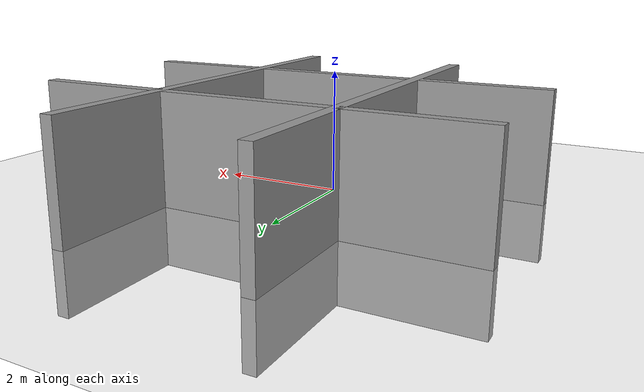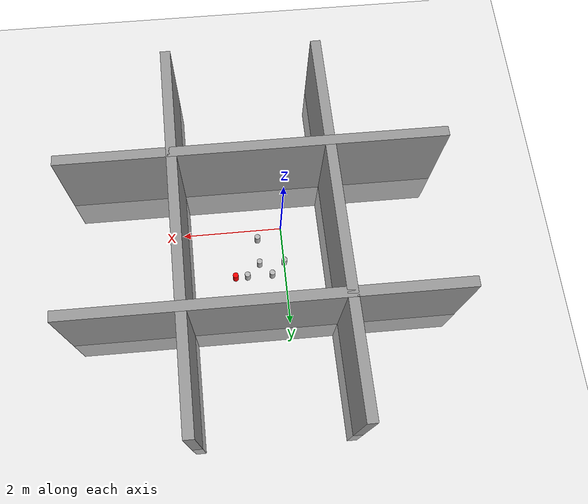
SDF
<sdf version="1.6">
 <world name="default">
  <light name="sun" type="directional">
   <pose>0 0 10 0 -0 0</pose>
   <diffuse>0.8 0.8 0.8 1</diffuse>
   <specular>0.1 0.1 0.1 1</specular>
   <attenuation>
    <range>1000</range>
    <constant>0.9</constant>
    <linear>0.01</linear>
    <quadratic>0.001</quadratic>
   </attenuation>
   <direction>-0.5 0.5 -1</direction>
  </light>
  <model name="ground_plane">
   <static>1</static>
   <link name="link">
    <collision name="collision">
     <geometry><plane><normal>0 0 1</normal><size>100 100</size></plane></geometry>
     <surface><friction><ode><mu>100</mu><mu2>50</mu2></ode></friction></surface>
    </collision>
    <visual name="visual">
     <cast_shadows>0</cast_shadows>
     <geometry><plane><normal>0 0 1</normal><size>100 100</size></plane></geometry>
     <material>
      <script><uri>file://media/materials/scripts/gazebo.material</uri><name>Gazebo/Grey</name></script>
     </material>
    </visual>
   </link>
  </model>
  <gravity>0 0 -9.8</gravity>
  <magnetic_field>6e-06 2.3e-05 -4.2e-05</magnetic_field>
  <atmosphere type="adiabatic"/>
  <physics name="default_physics" default="0" type="ode">
   <max_step_size>0.001</max_step_size>
   <real_time_factor>1</real_time_factor>
   <real_time_update_rate>1000</real_time_update_rate>
  </physics>
  <scene><ambient>0.4 0.4 0.4 1</ambient><background>0.7 0.7 0.7 1</background><shadows>1</shadows></scene>
  <spherical_coordinates>
   <surface_model>EARTH_WGS84</surface_model>
   <latitude_deg>0</latitude_deg>
   <longitude_deg>0</longitude_deg>
   <elevation>0</elevation>
   <heading_deg>0</heading_deg>
  </spherical_coordinates>
  <model name="goal">
   <link name="link">
    <pose>0 0 0.115 0 -0 0</pose>
    <inertial>
     <mass>0.0005</mass>
     <inertia><ixx>0.00058</ixx><ixy>0</ixy><ixz>0</ixz><iyy>0.00058</iyy><iyz>0</iyz><izz>0.00019</izz></inertia>
    </inertial>
    <visual name="visual">
     <geometry><cylinder><radius>0.055</radius><length>0.23</length></cylinder></geometry>
     <material>
      <script>
       <uri>model://beer/materials/scripts</uri>
       <uri>model://beer/materials/textures</uri>
       <name>Beer/Diffuse</name>
      </script>
      <ambient>1 0 0 1</ambient>
      <diffuse>1 0 0 1</diffuse>
      <specular>0 0 0 1</specular>
      <emissive>0 0 0 1</emissive>
      <shader type="vertex"><normal_map>__default__</normal_map></shader>
     </material>
    </visual>
    <collision name="collision">
     <geometry><cylinder><radius>0.055</radius><length>0.23</length></cylinder></geometry>
     <surface>
      <friction>
       <ode><mu>1</mu><mu2>1</mu2><fdir1>0 0 0</fdir1><slip1>0</slip1><slip2>0</slip2></ode>
       <torsional>
        <coefficient>1</coefficient>
        <patch_radius>0</patch_radius>
        <surface_radius>0</surface_radius>
        <use_patch_radius>1</use_patch_radius>
        <ode><slip>0</slip></ode>
       </torsional>
      </friction>
      <bounce><restitution_coefficient>0</restitution_coefficient><threshold>1e+06</threshold></bounce>
      <contact>
       <collide_without_contact>0</collide_without_contact>
       <collide_without_contact_bitmask>1</collide_without_contact_bitmask>
       <collide_bitmask>1</collide_bitmask>
       <ode>
        <soft_cfm>0</soft_cfm>
        <soft_erp>0.2</soft_erp>
        <kp>1e+13</kp>
        <kd>1</kd>
        <max_vel>0.01</max_vel>
        <min_depth>0</min_depth>
       </ode>
       <bullet>
        <split_impulse>1</split_impulse>
        <split_impulse_penetration_threshold>-0.01</split_impulse_penetration_threshold>
        <soft_cfm>0</soft_cfm>
        <soft_erp>0.2</soft_erp>
        <kp>1e+13</kp>
        <kd>1</kd>
       </bullet>
      </contact>
     </surface>
    </collision>
   </link>
   <static>0</static>
   <pose>1.0 1.0 -9e-06 -1e-06 -4e-06 0</pose>
  </model>
  <model name="wall1">
   <static>1</static>
   <link name="link">
    <pose>0 0 0.42 0 -0 0</pose>
    <collision name="collision"><geometry><box><size>7.5 0.2 2.8</size></box></geometry></collision>
    <visual name="visual">
     <cast_shadows>0</cast_shadows>
     <geometry><box><size>7.5 0.2 2.8</size></box></geometry>
     <material>
      <script>
       <uri>model://grey_wall/materials/scripts</uri>
       <uri>model://grey_wall/materials/textures</uri>
       <name>vrc/grey_wall</name>
      </script>
     </material>
    </visual>
   </link>
   <pose>-1 0.5 0 0 -0 -1.55905</pose>
  </model>
  <model name="wall2">
   <static>1</static>
   <link name="link">
    <pose>0 0 0.42 0 -0 0</pose>
    <collision name="collision"><geometry><box><size>7.5 0.2 2.8</size></box></geometry></collision>
    <visual name="visual">
     <cast_shadows>0</cast_shadows>
     <geometry><box><size>7.5 0.2 2.8</size></box></geometry>
     <material>
      <script>
       <uri>model://grey_wall/materials/scripts</uri>
       <uri>model://grey_wall/materials/textures</uri>
       <name>vrc/grey_wall</name>
      </script>
     </material>
    </visual>
   </link>
   <pose>0.5 2.0 0 0 -0 0</pose>
  </model>
  <model name="wall3">
   <static>1</static>
   <link name="link">
    <pose>0 0 0.42 0 -0 0</pose>
    <collision name="collision"><geometry><box><size>7.5 0.2 2.8</size></box></geometry></collision>
    <visual name="visual">
     <cast_shadows>0</cast_shadows>
     <geometry><box><size>7.5 0.2 2.8</size></box></geometry>
     <material>
      <script>
       <uri>model://grey_wall/materials/scripts</uri>
       <uri>model://grey_wall/materials/textures</uri>
       <name>vrc/grey_wall</name>
      </script>
     </material>
    </visual>
   </link>
   <pose>2.0 0.5 0 0 -0 -1.55905</pose>
  </model>
  <model name="wall4">
   <static>1</static>
   <link name="link">
    <pose>0 0 0.42 0 -0 0</pose>
    <collision name="collision"><geometry><box><size>7.5 0.2 2.8</size></box></geometry></collision>
    <visual name="visual">
     <cast_shadows>0</cast_shadows>
     <geometry><box><size>7.5 0.2 2.8</size></box></geometry>
     <material>
      <script>
       <uri>model://grey_wall/materials/scripts</uri>
       <uri>model://grey_wall/materials/textures</uri>
       <name>vrc/grey_wall</name>
      </script>
     </material>
    </visual>
   </link>
   <pose>0.5 -1 0 0 -0 0</pose>
  </model>
  <model name="can0.7615635818871.0">
   <link name="link">
    <pose>0 0 0.115 0 -0 0</pose>
    <inertial>
     <mass>0.39</mass>
     <inertia><ixx>0.00058</ixx><ixy>0</ixy><ixz>0</ixz><iyy>0.00058</iyy><iyz>0</iyz><izz>0.00019</izz></inertia>
    </inertial>
    <collision name="collision">
     <geometry><cylinder><radius>0.055</radius><length>0.23</length></cylinder></geometry>
    </collision>
    <visual name="visual">
     <geometry><cylinder><radius>0.055</radius><length>0.23</length></cylinder></geometry>
     <material>
      <script>
       <uri>model://beer/materials/scripts</uri>
       <uri>model://beer/materials/textures</uri>
       <name>Beer/Diffuse</name>
      </script>
     </material>
    </visual>
   </link>
   <pose>0.761563581887 1.0 -2e-06 1e-06 0 -9.5e-05</pose>
  </model>
  <model name="can0.00.746787555282">
   <link name="link">
    <pose>0 0 0.115 0 -0 0</pose>
    <inertial>
     <mass>0.39</mass>
     <inertia><ixx>0.00058</ixx><ixy>0</ixy><ixz>0</ixz><iyy>0.00058</iyy><iyz>0</iyz><izz>0.00019</izz></inertia>
    </inertial>
    <collision name="collision">
     <geometry><cylinder><radius>0.055</radius><length>0.23</length></cylinder></geometry>
    </collision>
    <visual name="visual">
     <geometry><cylinder><radius>0.055</radius><length>0.23</length></cylinder></geometry>
     <material>
      <script>
       <uri>model://beer/materials/scripts</uri>
       <uri>model://beer/materials/textures</uri>
       <name>Beer/Diffuse</name>
      </script>
     </material>
    </visual>
   </link>
   <pose>0.0 0.746787555282 -2e-06 1e-06 0 -9.5e-05</pose>
  </model>
  <model name="can0.2654599720961.0">
   <link name="link">
    <pose>0 0 0.115 0 -0 0</pose>
    <inertial>
     <mass>0.39</mass>
     <inertia><ixx>0.00058</ixx><ixy>0</ixy><ixz>0</ixz><iyy>0.00058</iyy><iyz>0</iyz><izz>0.00019</izz></inertia>
    </inertial>
    <collision name="collision">
     <geometry><cylinder><radius>0.055</radius><length>0.23</length></cylinder></geometry>
    </collision>
    <visual name="visual">
     <geometry><cylinder><radius>0.055</radius><length>0.23</length></cylinder></geometry>
     <material>
      <script>
       <uri>model://beer/materials/scripts</uri>
       <uri>model://beer/materials/textures</uri>
       <name>Beer/Diffuse</name>
      </script>
     </material>
    </visual>
   </link>
   <pose>0.265459972096 1.0 -2e-06 1e-06 0 -9.5e-05</pose>
  </model>
  <model name="can0.50.74825235342">
   <link name="link">
    <pose>0 0 0.115 0 -0 0</pose>
    <inertial>
     <mass>0.39</mass>
     <inertia><ixx>0.00058</ixx><ixy>0</ixy><ixz>0</ixz><iyy>0.00058</iyy><iyz>0</iyz><izz>0.00019</izz></inertia>
    </inertial>
    <collision name="collision">
     <geometry><cylinder><radius>0.055</radius><length>0.23</length></cylinder></geometry>
    </collision>
    <visual name="visual">
     <geometry><cylinder><radius>0.055</radius><length>0.23</length></cylinder></geometry>
     <material>
      <script>
       <uri>model://beer/materials/scripts</uri>
       <uri>model://beer/materials/textures</uri>
       <name>Beer/Diffuse</name>
      </script>
     </material>
    </visual>
   </link>
   <pose>0.5 0.74825235342 -2e-06 1e-06 0 -9.5e-05</pose>
  </model>
  <model name="can0.50.218411751346">
   <link name="link">
    <pose>0 0 0.115 0 -0 0</pose>
    <inertial>
     <mass>0.39</mass>
     <inertia><ixx>0.00058</ixx><ixy>0</ixy><ixz>0</ixz><iyy>0.00058</iyy><iyz>0</iyz><izz>0.00019</izz></inertia>
    </inertial>
    <collision name="collision">
     <geometry><cylinder><radius>0.055</radius><length>0.23</length></cylinder></geometry>
    </collision>
    <visual name="visual">
     <geometry><cylinder><radius>0.055</radius><length>0.23</length></cylinder></geometry>
     <material>
      <script>
       <uri>model://beer/materials/scripts</uri>
       <uri>model://beer/materials/textures</uri>
       <name>Beer/Diffuse</name>
      </script>
     </material>
    </visual>
   </link>
   <pose>0.5 0.218411751346 -2e-06 1e-06 0 -9.5e-05</pose>
  </model>
 </world>
</sdf>
